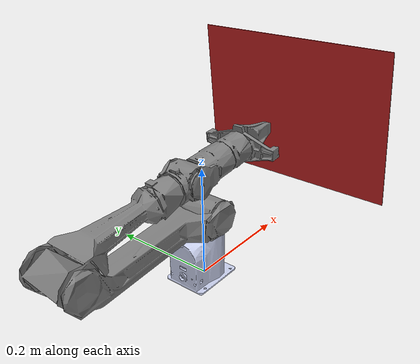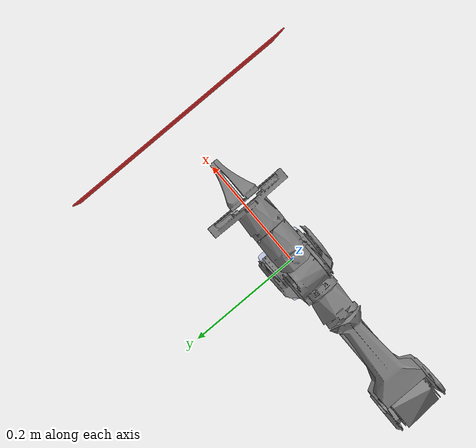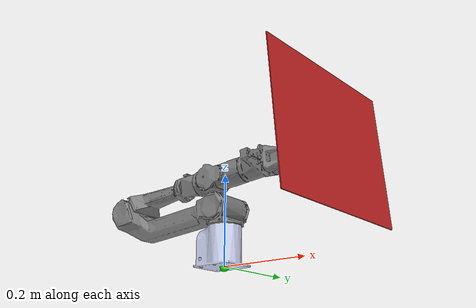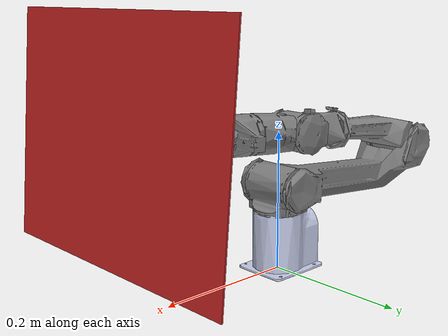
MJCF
<mujoco model="piper_calibration">
    <compiler angle="radian" coordinate="local"/>
    <option timestep="0.002"/>
    <size njmax="500" nconmax="100"/>
    <visual>
        <global offheight="640" offwidth="640"/>
    </visual>

    <asset>
        <texture name="checker_tex" type="2d" file="/home/ubuntu/3d_proj/checkerboard_bordered.png" builtin="none"/>
        <material name="checker_mat" texture="checker_tex" texrepeat="1 1" />
        <mesh name="base_link" file="meshes/base_link.STL" />
        <mesh name="link1" file="meshes/link1.STL" />
        <mesh name="link2" file="meshes/link2.STL" />
        <mesh name="link3" file="meshes/link3.STL" />
        <mesh name="link4" file="meshes/link4.STL" />
        <mesh name="link5" file="meshes/link5.STL" />
        <mesh name="link6" file="meshes/link6.STL" />
        <mesh name="gripper_base" file="meshes/gripper_base.STL" />
        <mesh name="link7" file="meshes/link7.STL" />
        <mesh name="link8" file="meshes/link8.STL" />
    </asset>

    <worldbody>
        <body name="gt_marker_body" mocap="true">
                <site name="marker_true" type="sphere" size="0.01" rgba="0 1 0 1"/>
            </body>
            <body name="pred_marker_body" mocap="true">
                <site name="marker_est" type="sphere" size="0.01" rgba="1 0 0 1"/>
        </body>

        <light name="light0" pos="0 0 1" dir="0 0 -1" diffuse="1 1 1" specular="0.3 0.3 0.3" castshadow="false"/>

        <!-- Overhead fixed camera for Eye-to-Hand -->
        <camera name="fixed_cam" pos="0 0 1.0" quat="0.7071 0 0 0.7071" fovy="80"/>

        <!-- Robot base -->
        <geom type="mesh" rgba="0.792157 0.819608 0.933333 1" mesh="base_link" />
        <body name="link1" pos="0 0 0.123">
            <joint name="joint1" pos="0 0 0" axis="0 0 1" limited="true" range="-2.618 2.168" damping="500"/>
            <geom type="mesh" mesh="link1" />
            <body name="link2" pos="0 0 0" quat="0.0356735 -0.0356786 -0.706207 -0.706205">
                <joint name="joint2" pos="0 0 0" axis="0 0 1" limited="true" range="0 3.14" damping="5"/>
                <geom type="mesh" mesh="link2" />
                <body name="link3" pos="0.28503 0 0" quat="0.637536 0 0 -0.77042">
                    <joint name="joint3" pos="0 0 0" axis="0 0 1" limited="true" range="-2.967 0" damping="20"/>
                    <geom type="mesh" mesh="link3" />
                    <body name="link4" pos="-0.021984 -0.25075 0" quat="0.707105 0.707108 0 0">
                        <joint name="joint4" pos="0 0 0" axis="0 0 1" limited="true" range="-1.745 1.745" damping="5"/>
                        <geom type="mesh" mesh="link4" />
                        <body name="link5" pos="0 0 0" quat="0.707105 -0.707108 0 0">
                            <joint name="joint5" pos="0 0 0" axis="0 0 1" limited="true" range="-1.22 1.22" damping="5"/>
                            <geom type="mesh" mesh="link5" />
                            <body name="link6" pos="8.8259e-05 -0.091 0" quat="0.707105 0.707108 0 0">
                                <joint name="joint6" pos="0 0 0" axis="0 0 1" limited="true" range="-2.0944 2.0944" damping="5"/>
                                <geom type="mesh" mesh="link6" />
                                <geom type="mesh" mesh="gripper_base" />

                                <!-- ✅ Checkerboard now attached to end-effector -->
                                <body name="checkerboard_mount" pos="0 0 0.22">
                                    <geom name="checker_geom" type="box" size="0.15 0.2 0.001" material="checker_mat"/>
                                </body>

                                <!-- (Optional) Still includes Eye-in-Hand camera -->
                                <body name="ee_camera_mount" pos="0 0 0.22">
                                    <camera name="ee_cam" pos="0 0 0" euler="1.58 0 0" fovy="80"/>
                                </body>

                                <body name="link7" pos="0 0 0.1358" quat="0.707105 0.707108 0 0">
                                    <joint name="joint7" pos="0 0 0" axis="0 0 1" type="slide" limited="true" range="0 0.035" damping="100"/>
                                    <geom type="mesh" mesh="link7" />
                                </body>
                                <body name="link8" pos="0 0 0.1358" quat="-2.59734e-06 -2.59735e-06 -0.707108 -0.707105">
                                    <joint name="joint8" pos="0 0 0" axis="0 0 -1" type="slide" limited="true" range="-0.035 0" damping="100"/>
                                    <geom type="mesh" mesh="link8" />
                                </body>
                            </body>
                        </body>
                    </body>
                </body>
            </body>
        </body>
    </worldbody>

    <actuator>
        <position name="joint1" joint="joint1" kp="10000" ctrlrange="-2.618 2.618" ctrllimited="true"/>
        <position name="joint2" joint="joint2" kp="2000" ctrlrange="0 3.14158" ctrllimited="true"/>
        <position name="joint3" joint="joint3" kp="2000" ctrlrange="-2.697 0" ctrllimited="true"/>
        <position name="joint4" joint="joint4" kp="500" ctrlrange="-1.832 1.832" ctrllimited="true"/>
        <position name="joint5" joint="joint5" kp="200" ctrlrange="-1.22 1.22" ctrllimited="true"/>
        <position name="joint6" joint="joint6" kp="200" ctrlrange="-3.14158 3.14158" ctrllimited="true"/>
        <position name="joint7" joint="joint7" kp="10000" ctrlrange="0 0.0475" ctrllimited="true"/>
        <position name="joint8" joint="joint8" kp="10000" ctrlrange="-0.0475 0" ctrllimited="true"/>
    </actuator>
</mujoco>
